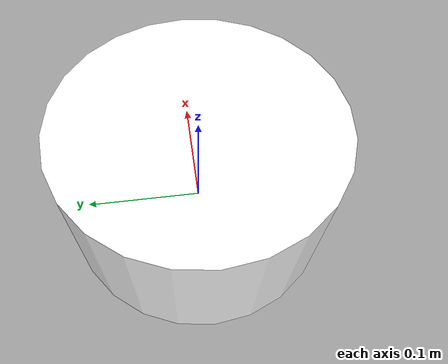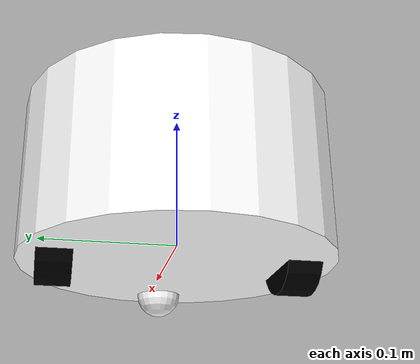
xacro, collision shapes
<?xml version="1.0"?>
<robot xmlns:xacro="http://www.ros.org/wiki/xacro"
       name="dhtbot">

  <!-- =========================
       MACRO MÔ HÌNH ROBOT
       ========================= -->
  <xacro:macro name="dhtbot_core" params="">

    <!-- Materials (đổi tên để tránh trùng lặp) -->
    <material name="mat_white"><color rgba="1 1 1 1"/></material>
    <material name="mat_black"><color rgba="0 0 0 1"/></material>

    <!-- =========================
         BASE LINK
         ========================= -->
    <link name="base_link">

      <visual>
        <origin xyz="0 0 -0.015" rpy="0 0 0"/>
        <geometry>
          <mesh filename="package://dhtbot_one/meshes/base_link.STL"/>
        </geometry>
        <material name="mat_white"/>
      </visual>

      <collision>
        <origin xyz="0 0 0.045" rpy="0 0 0"/>
        <geometry>
          <cylinder radius="0.115" length="0.12"/>
        </geometry>
      </collision>

      <inertial>
        <mass value="1.0"/>
        <origin xyz="0 0 0.045"/>
        <inertia
          ixx="0.002" iyy="0.002" izz="0.002"
          ixy="0.0" ixz="0.0" iyz="0.0"/>
      </inertial>

    </link>

    <!-- =========================
         LEFT WHEEL
         ========================= -->
    <link name="left_wheel_link">

      <visual>
        <geometry>
          <cylinder length="0.025" radius="0.0325"/>
        </geometry>
        <material name="mat_black"/>
      </visual>

      <collision>
        <geometry>
          <cylinder length="0.025" radius="0.0325"/>
        </geometry>
      </collision>

      <inertial>
        <mass value="0.1"/>
        <origin xyz="0 0 0"/>
        <inertia
          ixx="0.00002" iyy="0.00002" izz="0.00001"
          ixy="0" ixz="0" iyz="0"/>
      </inertial>

    </link>

    <joint name="left_wheel_joint" type="continuous">
      <parent link="base_link"/>
      <child  link="left_wheel_link"/>
      <origin xyz="0 0.0875 0" rpy="-${pi/2} 0 0"/>
      <axis xyz="0 0 1"/>
    </joint>

    <!-- =========================
         RIGHT WHEEL
         ========================= -->
    <link name="right_wheel_link">

      <visual>
        <geometry>
          <cylinder length="0.025" radius="0.0325"/>
        </geometry>
        <material name="mat_black"/>
      </visual>

      <collision>
        <geometry>
          <cylinder length="0.025" radius="0.0325"/>
        </geometry>
      </collision>

      <inertial>
        <mass value="0.1"/>
        <origin xyz="0 0 0"/>
        <inertia
          ixx="0.00002" iyy="0.00002" izz="0.00001"
          ixy="0" ixz="0" iyz="0"/>
      </inertial>

    </link>

    <joint name="right_wheel_joint" type="continuous">
      <parent link="base_link"/>
      <child  link="right_wheel_link"/>
      <origin xyz="0 -0.0875 0" rpy="${pi/2} 0 0"/>
      <axis xyz="0 0 -1"/>
    </joint>

    <!-- =========================
         CASTER (BÁNH ĐỠ)
         ========================= -->
    <link name="caster_link">

      <visual>
        <geometry>
          <mesh filename="package://dhtbot_one/meshes/caster_wheel_link.STL"/>
        </geometry>
        <material name="mat_white"/>
      </visual>

      <collision>
        <geometry>
          <sphere radius="0.0175"/>
        </geometry>
      </collision>

      <inertial>
        <mass value="0.05"/>
        <inertia
          ixx="0.00001" iyy="0.00001" izz="0.00001"
          ixy="0" ixz="0" iyz="0"/>
      </inertial>

    </link>

    <joint name="caster_joint" type="fixed">
      <parent link="base_link"/>
      <child  link="caster_link"/>
      <origin xyz="0.09 0 -0.015" rpy="0 0 0"/>
    </joint>

  </xacro:macro>

  <!-- GỌI MACRO ĐỂ TẠO ROBOT -->
  <xacro:dhtbot_core />

  <!-- =========================
       ROS2 CONTROL (GZ SIM)
       ========================= -->
  <ros2_control name="dhtbot_system" type="system">

    <hardware>
      <plugin>gz_ros2_control/GazeboSimSystem</plugin>
    </hardware>

    <joint name="left_wheel_joint">
      <command_interface name="velocity"/>
      <state_interface   name="position"/>
      <state_interface   name="velocity"/>
    </joint>

    <joint name="right_wheel_joint">
      <command_interface name="velocity"/>
      <state_interface   name="position"/>
      <state_interface   name="velocity"/>
    </joint>

  </ros2_control>

  <!-- =========================
       GAZEBO HARMONIC PLUGIN
       ========================= -->
  <gazebo>
    <plugin
      filename="libgz_ros2_control-system.so"
      name="gz_ros2_control::GazeboSimROS2ControlPlugin">
      <parameters>
        package://dhtbot_one/config/controller_gz.yaml
      </parameters>
    </plugin>
  </gazebo>

</robot>
